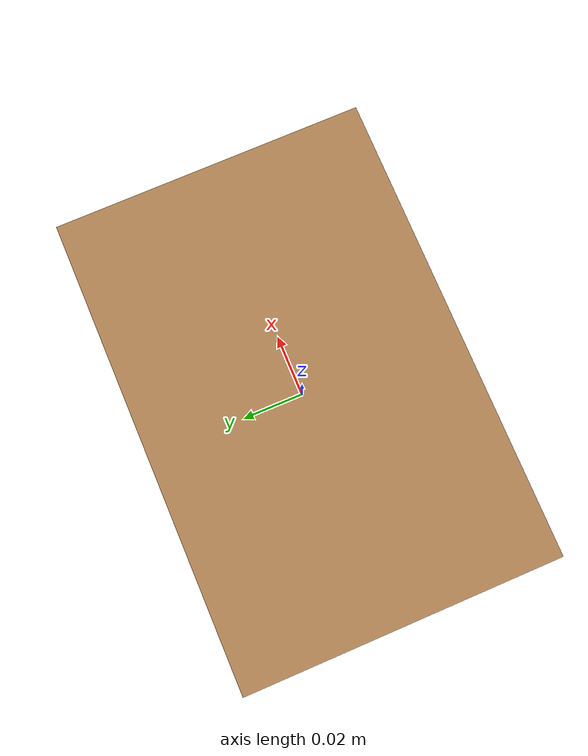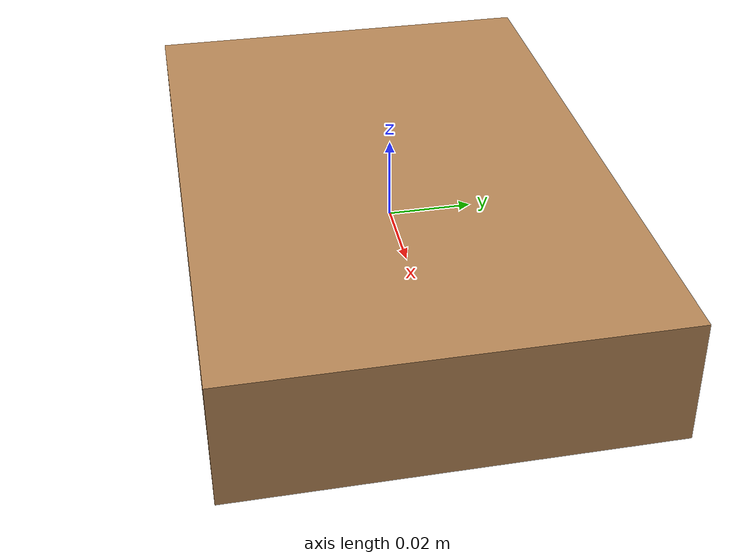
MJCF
<mujoco model="cardboard_box_0">
  <asset>
    <material name="cardboard_box_mat" rgba="0.72 0.53 0.34 1" specular="0.15" shininess="0.25"/>
  </asset>
  <default>
    <default class="region">
      <geom group="1" conaffinity="0" contype="0" rgba="0 1 0 0"/>
    </default>
  </default>
  <worldbody>
    <body>
      <body name="object" pos="0 0 0">
        <geom name="cardboard_visual" type="box" size="0.075 0.050 0.015" material="cardboard_box_mat" conaffinity="0" contype="0" group="1"/>
        <geom name="cardboard_collision" type="box" size="0.075 0.050 0.015" density="450" condim="4" friction="0.95 0.02 0.001" solimp="0.998 0.998 0.001" solref="0.004 1" group="0" rgba="0 0 0 0"/>
        <geom class="region" name="reg_bbox" type="box" pos="0 0 0" size="0.075 0.050 0.015"/>
        <site name="bottom_site" pos="0 0 -0.015" size="0.004" rgba="0 0 0 0"/>
        <site name="top_site" pos="0 0 0.015" size="0.004" rgba="0 0 0 0"/>
        <site name="horizontal_radius_site" pos="0.075 0.050 0" size="0.004" rgba="0 0 0 0"/>
      </body>
    </body>
  </worldbody>
</mujoco>
